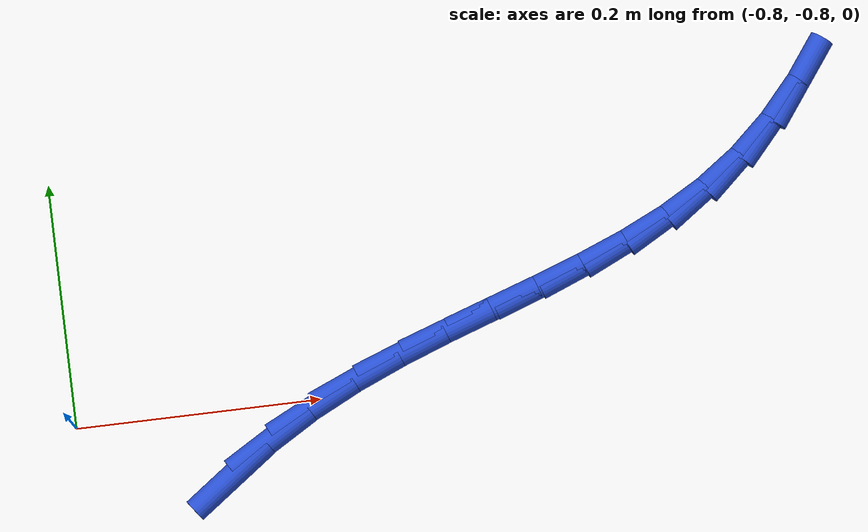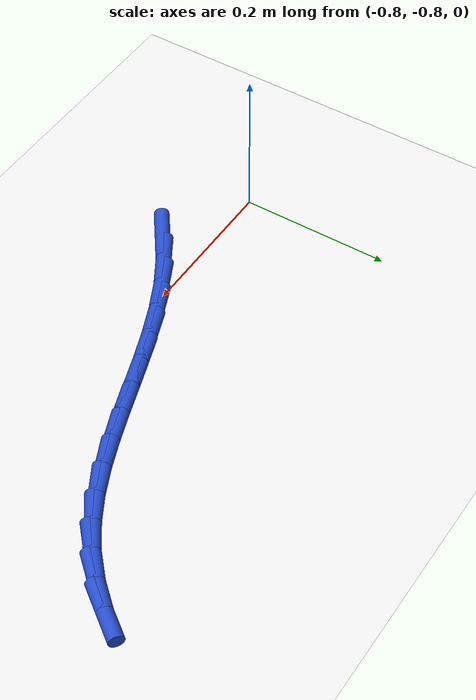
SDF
<sdf version="1.6">
 <world name="default">
  <model name="ground_plane">
   <static>1</static>
   <link name="link">
    <collision name="collision">
     <geometry><plane><normal>0 0 1</normal><size>100 100</size></plane></geometry>
     <surface><friction><ode><mu>100</mu><mu2>50</mu2></ode></friction></surface>
    </collision>
    <visual name="visual">
     <cast_shadows>0</cast_shadows>
     <geometry><plane><normal>0 0 1</normal><size>100 100</size></plane></geometry>
     <material>
      <script><uri>file://media/materials/scripts/gazebo.material</uri><name>Gazebo/WhiteGlow</name></script>
     </material>
    </visual>
   </link>
  </model>
  <model name="line">
   <link name="link_151">
    <pose>-0.6800051466051475 -0.8552245368684553 0.01 0 1.57 0.6297770201234592</pose>
    <collision name="collision">
     <geometry><cylinder><radius>0.01</radius><length>0.08</length></cylinder></geometry>
    </collision>
    <visual name="visual">
     <material>
      <script><name>Gazebo/Blue</name><uri>file://media/materials/scripts/gazebo.material</uri></script>
     </material>
     <geometry><cylinder><radius>0.01</radius><length>0.08</length></cylinder></geometry>
    </visual>
   </link>
   <link name="link_152">
    <pose>-0.6444930038639333 -0.829344236587523 0.01 0 1.57 0.5354774264680113</pose>
    <collision name="collision">
     <geometry><cylinder><radius>0.01</radius><length>0.08</length></cylinder></geometry>
    </collision>
    <visual name="visual">
     <material>
      <script><name>Gazebo/Blue</name><uri>file://media/materials/scripts/gazebo.material</uri></script>
     </material>
     <geometry><cylinder><radius>0.01</radius><length>0.08</length></cylinder></geometry>
    </visual>
   </link>
   <link name="link_153">
    <pose>-0.6074721698729595 -0.8073798277442819 0.01 0 1.57 0.457113548199906</pose>
    <collision name="collision">
     <geometry><cylinder><radius>0.01</radius><length>0.08</length></cylinder></geometry>
    </collision>
    <visual name="visual">
     <material>
      <script><name>Gazebo/Blue</name><uri>file://media/materials/scripts/gazebo.material</uri></script>
     </material>
     <geometry><cylinder><radius>0.01</radius><length>0.08</length></cylinder></geometry>
    </visual>
   </link>
   <link name="link_154">
    <pose>-0.5693182498946338 -0.7886134824291683 0.01 0 1.57 0.39638915810451597</pose>
    <collision name="collision">
     <geometry><cylinder><radius>0.01</radius><length>0.08</length></cylinder></geometry>
    </collision>
    <visual name="visual">
     <material>
      <script><name>Gazebo/Blue</name><uri>file://media/materials/scripts/gazebo.material</uri></script>
     </material>
     <geometry><cylinder><radius>0.01</radius><length>0.08</length></cylinder></geometry>
    </visual>
   </link>
   <link name="link_155">
    <pose>-0.5304068491913677 -0.7723273727326216 0.01 0 1.57 0.3540483504476811</pose>
    <collision name="collision">
     <geometry><cylinder><radius>0.01</radius><length>0.08</length></cylinder></geometry>
    </collision>
    <visual name="visual">
     <material>
      <script><name>Gazebo/Blue</name><uri>file://media/materials/scripts/gazebo.material</uri></script>
     </material>
     <geometry><cylinder><radius>0.01</radius><length>0.08</length></cylinder></geometry>
    </visual>
   </link>
   <link name="link_156">
    <pose>-0.49111357302556957 -0.7578036707450785 0.01 0 1.57 0.3304110136726524</pose>
    <collision name="collision">
     <geometry><cylinder><radius>0.01</radius><length>0.08</length></cylinder></geometry>
    </collision>
    <visual name="visual">
     <material>
      <script><name>Gazebo/Blue</name><uri>file://media/materials/scripts/gazebo.material</uri></script>
     </material>
     <geometry><cylinder><radius>0.01</radius><length>0.08</length></cylinder></geometry>
    </visual>
   </link>
   <link name="link_157">
    <pose>-0.4518140266596487 -0.7443245485569765 0.01 0 1.57 0.3258053837161615</pose>
    <collision name="collision">
     <geometry><cylinder><radius>0.01</radius><length>0.08</length></cylinder></geometry>
    </collision>
    <visual name="visual">
     <material>
      <script><name>Gazebo/Blue</name><uri>file://media/materials/scripts/gazebo.material</uri></script>
     </material>
     <geometry><cylinder><radius>0.01</radius><length>0.08</length></cylinder></geometry>
    </visual>
   </link>
   <link name="link_158">
    <pose>-0.41288381535601465 -0.7311721782587536 0.01 0 1.57 0.34083552897804126</pose>
    <collision name="collision">
     <geometry><cylinder><radius>0.01</radius><length>0.08</length></cylinder></geometry>
    </collision>
    <visual name="visual">
     <material>
      <script><name>Gazebo/Blue</name><uri>file://media/materials/scripts/gazebo.material</uri></script>
     </material>
     <geometry><cylinder><radius>0.01</radius><length>0.08</length></cylinder></geometry>
    </visual>
   </link>
   <link name="link_159">
    <pose>-0.37469854437707595 -0.7176287319408468 0.01 0 1.57 0.37646359845892824</pose>
    <collision name="collision">
     <geometry><cylinder><radius>0.01</radius><length>0.08</length></cylinder></geometry>
    </collision>
    <visual name="visual">
     <material>
      <script><name>Gazebo/Blue</name><uri>file://media/materials/scripts/gazebo.material</uri></script>
     </material>
     <geometry><cylinder><radius>0.01</radius><length>0.08</length></cylinder></geometry>
    </visual>
   </link>
   <link name="link_160">
    <pose>-0.3376338189852433 -0.7029763816936939 0.01 0 1.57 0.4338627351498992</pose>
    <collision name="collision">
     <geometry><cylinder><radius>0.01</radius><length>0.08</length></cylinder></geometry>
    </collision>
    <visual name="visual">
     <material>
      <script><name>Gazebo/Blue</name><uri>file://media/materials/scripts/gazebo.material</uri></script>
     </material>
     <geometry><cylinder><radius>0.01</radius><length>0.08</length></cylinder></geometry>
    </visual>
   </link>
   <link name="link_161">
    <pose>-0.3020652444429254 -0.6864972996077329 0.01 0 1.57 0.5139476838366134</pose>
    <collision name="collision">
     <geometry><cylinder><radius>0.01</radius><length>0.08</length></cylinder></geometry>
    </collision>
    <visual name="visual">
     <material>
      <script><name>Gazebo/Blue</name><uri>file://media/materials/scripts/gazebo.material</uri></script>
     </material>
     <geometry><cylinder><radius>0.01</radius><length>0.08</length></cylinder></geometry>
    </visual>
   </link>
   <link name="link_162">
    <pose>-0.2683684260125315 -0.6674736577734007 0.01 0 1.57 0.6164944745221506</pose>
    <collision name="collision">
     <geometry><cylinder><radius>0.01</radius><length>0.08</length></cylinder></geometry>
    </collision>
    <visual name="visual">
     <material>
      <script><name>Gazebo/Blue</name><uri>file://media/materials/scripts/gazebo.material</uri></script>
     </material>
     <geometry><cylinder><radius>0.01</radius><length>0.08</length></cylinder></geometry>
    </visual>
   </link>
   <link name="link_163">
    <pose>-0.23691896895647116 -0.6451876282811355 0.01 0 1.57 0.7349925713290207</pose>
    <collision name="collision">
     <geometry><cylinder><radius>0.01</radius><length>0.08</length></cylinder></geometry>
    </collision>
    <visual name="visual">
     <material>
      <script><name>Gazebo/Blue</name><uri>file://media/materials/scripts/gazebo.material</uri></script>
     </material>
     <geometry><cylinder><radius>0.01</radius><length>0.08</length></cylinder></geometry>
    </visual>
   </link>
   <link name="link_164">
    <pose>-0.2080276712293696 -0.6190713696035326 0.01 0 1.57 0.8448052097673882</pose>
    <collision name="collision">
     <geometry><cylinder><radius>0.01</radius><length>0.08</length></cylinder></geometry>
    </collision>
    <visual name="visual">
     <material>
      <script><name>Gazebo/Blue</name><uri>file://media/materials/scripts/gazebo.material</uri></script>
     </material>
     <geometry><cylinder><radius>0.01</radius><length>0.08</length></cylinder></geometry>
    </visual>
   </link>
   <link name="link_165">
    <pose>-0.18165635174285447 -0.5893646976502591 0.01 0 1.57 0.9387825633972622</pose>
    <collision name="collision">
     <geometry><cylinder><radius>0.01</radius><length>0.08</length></cylinder></geometry>
    </collision>
    <visual name="visual">
     <material>
      <script><name>Gazebo/Blue</name><uri>file://media/materials/scripts/gazebo.material</uri></script>
     </material>
     <geometry><cylinder><radius>0.01</radius><length>0.08</length></cylinder></geometry>
    </visual>
   </link>
  </model>
 </world>
</sdf>
